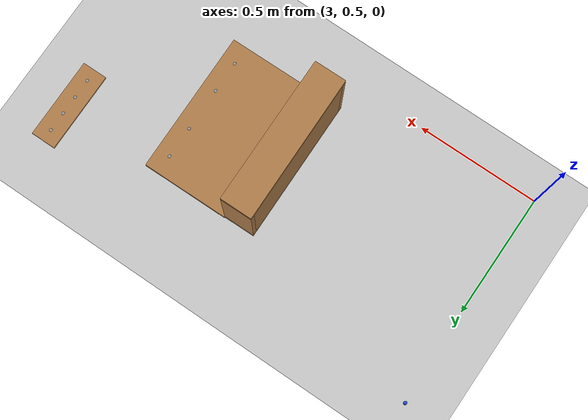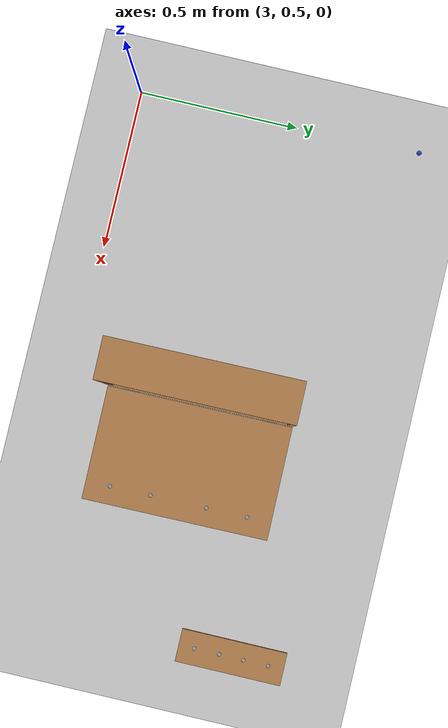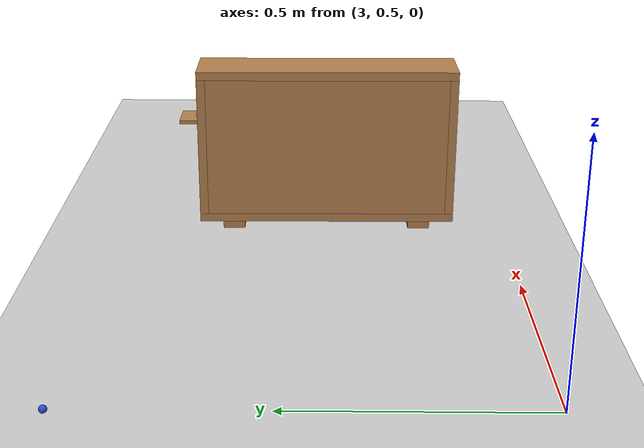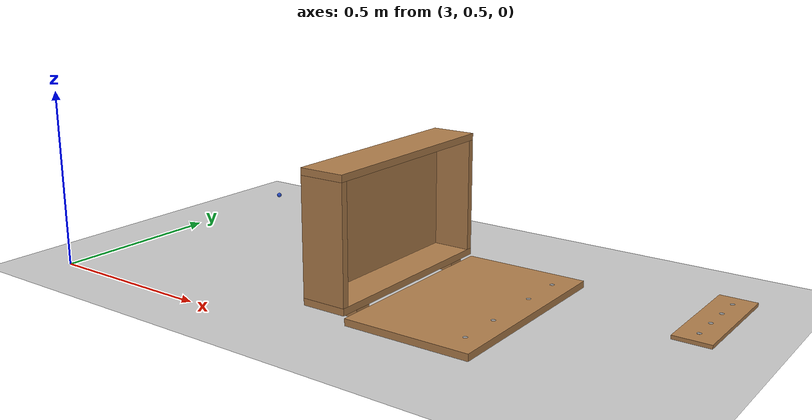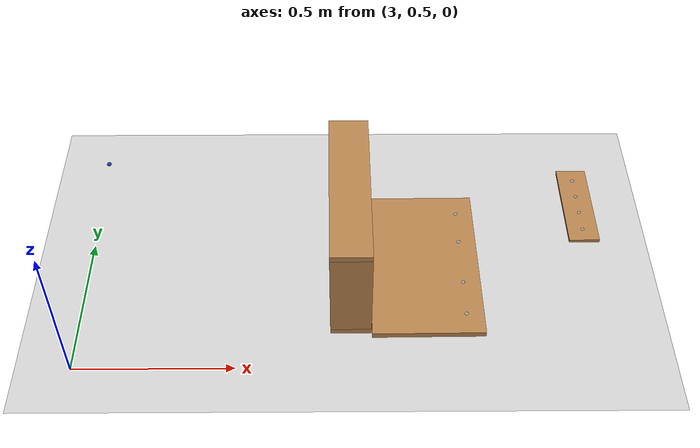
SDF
<sdf version="1.7">
 <world name="default">
  <model name="ground_plane">
   <static>1</static>
   <link name="link">
    <collision name="collision">
     <geometry><plane><normal>0 0 1</normal><size>100 100</size></plane></geometry>
     <surface>
      <contact><collide_bitmask>65535</collide_bitmask></contact>
      <friction><ode><mu>100</mu><mu2>50</mu2></ode></friction>
     </surface>
    </collision>
    <visual name="visual">
     <cast_shadows>0</cast_shadows>
     <geometry><plane><normal>0 0 1</normal><size>100 100</size></plane></geometry>
     <material>
      <script><uri>file://media/materials/scripts/gazebo.material</uri><name>Gazebo/Grey</name></script>
     </material>
    </visual>
   </link>
  </model>
  <model name="marble_1_5cm_1">
   <link name="link">
    <pose>0 0 0.0075 0 -0 0</pose>
    <inertial>
     <mass>0.0062</mass>
     <inertia>
      <ixx>1.395e-07</ixx>
      <ixy>0</ixy>
      <ixz>0</ixz>
      <iyy>1.395e-07</iyy>
      <iyz>0</iyz>
      <izz>1.395e-07</izz>
     </inertia>
    </inertial>
    <collision name="collision">
     <geometry><sphere><radius>0.0075</radius></sphere></geometry>
     <surface>
      <contact>
       <poissons_ratio>0.22</poissons_ratio>
       <elastic_modulus>5.1e+10</elastic_modulus>
       <ode><kp>100000</kp><kd>100</kd><max_vel>100</max_vel><min_depth>0.001</min_depth></ode>
      </contact>
      <friction>
       <torsional>
        <coefficient>1</coefficient>
        <use_patch_radius>0</use_patch_radius>
        <surface_radius>0.01</surface_radius>
       </torsional>
      </friction>
     </surface>
    </collision>
    <visual name="visual">
     <geometry><sphere><radius>0.0075</radius></sphere></geometry>
     <material>
      <script><uri>file://media/materials/scripts/gazebo.material</uri><name>Gazebo/Blue</name></script>
     </material>
    </visual>
    <velocity_decay><linear>0</linear><angular>0.005</angular></velocity_decay>
   </link>
   <pose>2.99077 1.38928 -0.001001 0 -0 0</pose>
  </model>
  <model name="wooden_board">
   <link name="base">
    <pose>0 0 0.00523 0 -0 0</pose>
    <inertial>
     <mass>0.2765</mass>
     <inertia>
      <ixx>0.0025148</ixx>
      <ixy>0</ixy>
      <ixz>0</ixz>
      <iyy>0.00024037</iyy>
      <iyz>0</iyz>
      <izz>0.00275013</izz>
     </inertia>
    </inertial>
    <collision name="collision">
     <geometry><box><size>0.1016 0.3302 0.01046</size></box></geometry>
     <surface>
      <contact>
       <poissons_ratio>0.347</poissons_ratio>
       <elastic_modulus>8.8e+09</elastic_modulus>
       <ode><kp>100000</kp><kd>100</kd><max_vel>100</max_vel><min_depth>0.001</min_depth></ode>
      </contact>
      <friction>
       <torsional>
        <coefficient>1</coefficient>
        <use_patch_radius>0</use_patch_radius>
        <surface_radius>0.01</surface_radius>
       </torsional>
      </friction>
     </surface>
    </collision>
    <visual name="visual">
     <geometry><box><size>0.1016 0.3302 0.01046</size></box></geometry>
     <material>
      <script><uri>file://media/materials/scripts/gazebo.material</uri><name>Gazebo/Wood</name></script>
     </material>
    </visual>
    <visual name="tee_nut_1">
     <pose>0 -0.116 0 0 -0 0</pose>
     <geometry><cylinder><radius>0.00635</radius><length>0.0105646</length></cylinder></geometry>
     <material>
      <script><uri>file://media/materials/scripts/gazebo.material</uri><name>Gazebo/Grey</name></script>
     </material>
    </visual>
    <visual name="tee_nut_2">
     <pose>0 -0.038 0 0 -0 0</pose>
     <geometry><cylinder><radius>0.00635</radius><length>0.0105646</length></cylinder></geometry>
     <material>
      <script><uri>file://media/materials/scripts/gazebo.material</uri><name>Gazebo/Grey</name></script>
     </material>
    </visual>
    <visual name="tee_nut_3">
     <pose>0 0.038 0 0 -0 0</pose>
     <geometry><cylinder><radius>0.00635</radius><length>0.0105646</length></cylinder></geometry>
     <material>
      <script><uri>file://media/materials/scripts/gazebo.material</uri><name>Gazebo/Grey</name></script>
     </material>
    </visual>
    <visual name="tee_nut_4">
     <pose>0 0.116 0 0 -0 0</pose>
     <geometry><cylinder><radius>0.00635</radius><length>0.0105646</length></cylinder></geometry>
     <material>
      <script><uri>file://media/materials/scripts/gazebo.material</uri><name>Gazebo/Grey</name></script>
     </material>
    </visual>
   </link>
   <pose>4.64142 1.17578 -0.001007 0 -0 0</pose>
  </model>
  <model name="wooden_case">
   <link name="base">
    <pose>0 0 0.024 0 -0 0</pose>
    <inertial>
     <pose>-0.022184 0 0.171592 0 -0 0</pose>
     <mass>3.96264</mass>
     <inertia>
      <ixx>0.213536</ixx>
      <ixy>0</ixy>
      <ixz>0.000779377</ixz>
      <iyy>0.0708943</iyy>
      <iyz>0</iyz>
      <izz>0.154604</izz>
     </inertia>
    </inertial>
    <collision name="collision_back">
     <pose>-0.053975 0 0.1778 0 -0 0</pose>
     <geometry><box><size>0.01905 0.5461 0.3175</size></box></geometry>
     <surface>
      <contact>
       <poissons_ratio>0.347</poissons_ratio>
       <elastic_modulus>8.8e+09</elastic_modulus>
       <ode><kp>100000</kp><kd>100</kd><max_vel>100</max_vel><min_depth>0.001</min_depth></ode>
      </contact>
      <friction>
       <torsional>
        <coefficient>1</coefficient>
        <use_patch_radius>0</use_patch_radius>
        <surface_radius>0.01</surface_radius>
       </torsional>
      </friction>
     </surface>
    </collision>
    <visual name="visual_back">
     <pose>-0.053975 0 0.1778 0 -0 0</pose>
     <geometry><box><size>0.01905 0.5461 0.3175</size></box></geometry>
     <material>
      <script><uri>file://media/materials/scripts/gazebo.material</uri><name>Gazebo/Wood</name></script>
     </material>
    </visual>
    <collision name="collision_bottom">
     <pose>0 0 0.009525 0 -0 0</pose>
     <geometry><box><size>0.127 0.5842 0.01905</size></box></geometry>
     <surface>
      <contact>
       <poissons_ratio>0.347</poissons_ratio>
       <elastic_modulus>8.8e+09</elastic_modulus>
       <ode><kp>100000</kp><kd>100</kd><max_vel>100</max_vel><min_depth>0.001</min_depth></ode>
      </contact>
      <friction>
       <torsional>
        <coefficient>1</coefficient>
        <use_patch_radius>0</use_patch_radius>
        <surface_radius>0.01</surface_radius>
       </torsional>
      </friction>
     </surface>
    </collision>
    <visual name="visual_bottom">
     <pose>0 0 0.009525 0 -0 0</pose>
     <geometry><box><size>0.127 0.5842 0.01905</size></box></geometry>
     <material>
      <script><uri>file://media/materials/scripts/gazebo.material</uri><name>Gazebo/Wood</name></script>
     </material>
    </visual>
    <collision name="collision_top">
     <pose>0 0 0.346075 0 -0 0</pose>
     <geometry><box><size>0.127 0.5842 0.01905</size></box></geometry>
     <surface>
      <contact>
       <poissons_ratio>0.347</poissons_ratio>
       <elastic_modulus>8.8e+09</elastic_modulus>
       <ode><kp>100000</kp><kd>100</kd><max_vel>100</max_vel><min_depth>0.001</min_depth></ode>
      </contact>
      <friction>
       <torsional>
        <coefficient>1</coefficient>
        <use_patch_radius>0</use_patch_radius>
        <surface_radius>0.01</surface_radius>
       </torsional>
      </friction>
     </surface>
    </collision>
    <visual name="visual_top">
     <pose>0 0 0.346075 0 -0 0</pose>
     <geometry><box><size>0.127 0.5842 0.01905</size></box></geometry>
     <material>
      <script><uri>file://media/materials/scripts/gazebo.material</uri><name>Gazebo/Wood</name></script>
     </material>
    </visual>
    <collision name="collision_left">
     <pose>0 -0.282575 0.1778 0 -0 0</pose>
     <geometry><box><size>0.127 0.01905 0.3175</size></box></geometry>
     <surface>
      <contact>
       <poissons_ratio>0.347</poissons_ratio>
       <elastic_modulus>8.8e+09</elastic_modulus>
       <ode><kp>100000</kp><kd>100</kd><max_vel>100</max_vel><min_depth>0.001</min_depth></ode>
      </contact>
      <friction>
       <torsional>
        <coefficient>1</coefficient>
        <use_patch_radius>0</use_patch_radius>
        <surface_radius>0.01</surface_radius>
       </torsional>
      </friction>
     </surface>
    </collision>
    <visual name="visual_left">
     <pose>0 -0.282575 0.1778 0 -0 0</pose>
     <geometry><box><size>0.127 0.01905 0.3175</size></box></geometry>
     <material>
      <script><uri>file://media/materials/scripts/gazebo.material</uri><name>Gazebo/Wood</name></script>
     </material>
    </visual>
    <collision name="collision_right">
     <pose>0 0.282575 0.1778 0 -0 0</pose>
     <geometry><box><size>0.127 0.01905 0.3175</size></box></geometry>
     <surface>
      <contact>
       <poissons_ratio>0.347</poissons_ratio>
       <elastic_modulus>8.8e+09</elastic_modulus>
       <ode><kp>100000</kp><kd>100</kd><max_vel>100</max_vel><min_depth>0.001</min_depth></ode>
      </contact>
      <friction>
       <torsional>
        <coefficient>1</coefficient>
        <use_patch_radius>0</use_patch_radius>
        <surface_radius>0.01</surface_radius>
       </torsional>
      </friction>
     </surface>
    </collision>
    <visual name="visual_right">
     <pose>0 0.282575 0.1778 0 -0 0</pose>
     <geometry><box><size>0.127 0.01905 0.3175</size></box></geometry>
     <material>
      <script><uri>file://media/materials/scripts/gazebo.material</uri><name>Gazebo/Wood</name></script>
     </material>
    </visual>
    <collision name="collision_block_left">
     <pose>0.0095 -0.2151 -0.012 0 -0 0</pose>
     <geometry><box><size>0.108 0.05 0.024</size></box></geometry>
     <surface>
      <contact>
       <poissons_ratio>0.347</poissons_ratio>
       <elastic_modulus>8.8e+09</elastic_modulus>
       <ode><kp>100000</kp><kd>100</kd><max_vel>100</max_vel><min_depth>0.001</min_depth></ode>
      </contact>
      <friction>
       <torsional>
        <coefficient>1</coefficient>
        <use_patch_radius>0</use_patch_radius>
        <surface_radius>0.01</surface_radius>
       </torsional>
      </friction>
     </surface>
    </collision>
    <visual name="visual_block_left">
     <pose>0.0095 -0.2151 -0.012 0 -0 0</pose>
     <geometry><box><size>0.108 0.05 0.024</size></box></geometry>
     <material>
      <script><uri>file://media/materials/scripts/gazebo.material</uri><name>Gazebo/Wood</name></script>
     </material>
    </visual>
    <collision name="collision_block_right">
     <pose>0.0095 0.2151 -0.012 0 -0 0</pose>
     <geometry><box><size>0.108 0.05 0.024</size></box></geometry>
     <surface>
      <contact>
       <poissons_ratio>0.347</poissons_ratio>
       <elastic_modulus>8.8e+09</elastic_modulus>
       <ode><kp>100000</kp><kd>100</kd><max_vel>100</max_vel><min_depth>0.001</min_depth></ode>
      </contact>
      <friction>
       <torsional>
        <coefficient>1</coefficient>
        <use_patch_radius>0</use_patch_radius>
        <surface_radius>0.01</surface_radius>
       </torsional>
      </friction>
     </surface>
    </collision>
    <visual name="visual_block_right">
     <pose>0.0095 0.2151 -0.012 0 -0 0</pose>
     <geometry><box><size>0.108 0.05 0.024</size></box></geometry>
     <material>
      <script><uri>file://media/materials/scripts/gazebo.material</uri><name>Gazebo/Wood</name></script>
     </material>
    </visual>
   </link>
   <link name="lid">
    <pose>0.243775 0 0.009525 0 -0 0</pose>
    <inertial>
     <mass>1.97874</mass>
     <inertia>
      <ixx>0.0563367</ixx>
      <ixy>0</ixy>
      <ixz>0</ixz>
      <iyy>0.020911</iyy>
      <iyz>0</iyz>
      <izz>0.0771281</izz>
     </inertia>
    </inertial>
    <collision name="collision">
     <geometry><box><size>0.3556 0.5842 0.01905</size></box></geometry>
     <surface>
      <contact>
       <poissons_ratio>0.347</poissons_ratio>
       <elastic_modulus>8.8e+09</elastic_modulus>
       <ode><kp>100000</kp><kd>100</kd><max_vel>100</max_vel><min_depth>0.001</min_depth></ode>
      </contact>
      <friction>
       <torsional>
        <coefficient>1</coefficient>
        <use_patch_radius>0</use_patch_radius>
        <surface_radius>0.01</surface_radius>
       </torsional>
      </friction>
     </surface>
    </collision>
    <visual name="visual">
     <geometry><box><size>0.3556 0.5842 0.01905</size></box></geometry>
     <material>
      <script><uri>file://media/materials/scripts/gazebo.material</uri><name>Gazebo/Wood</name></script>
     </material>
    </visual>
    <visual name="tee_nut_1">
     <pose>0.122 -0.216 0 0 -0 0</pose>
     <geometry><cylinder><radius>0.00635</radius><length>0.0192405</length></cylinder></geometry>
     <material>
      <script><uri>file://media/materials/scripts/gazebo.material</uri><name>Gazebo/Grey</name></script>
     </material>
    </visual>
    <visual name="tee_nut_2">
     <pose>0.122 -0.088 0 0 -0 0</pose>
     <geometry><cylinder><radius>0.00635</radius><length>0.0192405</length></cylinder></geometry>
     <material>
      <script><uri>file://media/materials/scripts/gazebo.material</uri><name>Gazebo/Grey</name></script>
     </material>
    </visual>
    <visual name="tee_nut_3">
     <pose>0.122 0.088 0 0 -0 0</pose>
     <geometry><cylinder><radius>0.00635</radius><length>0.0192405</length></cylinder></geometry>
     <material>
      <script><uri>file://media/materials/scripts/gazebo.material</uri><name>Gazebo/Grey</name></script>
     </material>
    </visual>
    <visual name="tee_nut_4">
     <pose>0.122 0.216 0 0 -0 0</pose>
     <geometry><cylinder><radius>0.00635</radius><length>0.0192405</length></cylinder></geometry>
     <material>
      <script><uri>file://media/materials/scripts/gazebo.material</uri><name>Gazebo/Grey</name></script>
     </material>
    </visual>
   </link>
   <joint name="lid_hinge" type="revolute">
    <pose>-0.1778 0 0.01905 0 -0 0</pose>
    <parent>base</parent>
    <child>lid</child>
    <axis>
     <xyz>0 1 0</xyz>
     <limit><upper>0.523599</upper><lower>-1.5708</lower></limit>
     <dynamics><spring_reference>0</spring_reference><spring_stiffness>0</spring_stiffness></dynamics>
    </axis>
   </joint>
   <pose>3.8503 0.906314 -0.001057 0 -0.000428 0.007914</pose>
  </model>
 </world>
</sdf>
